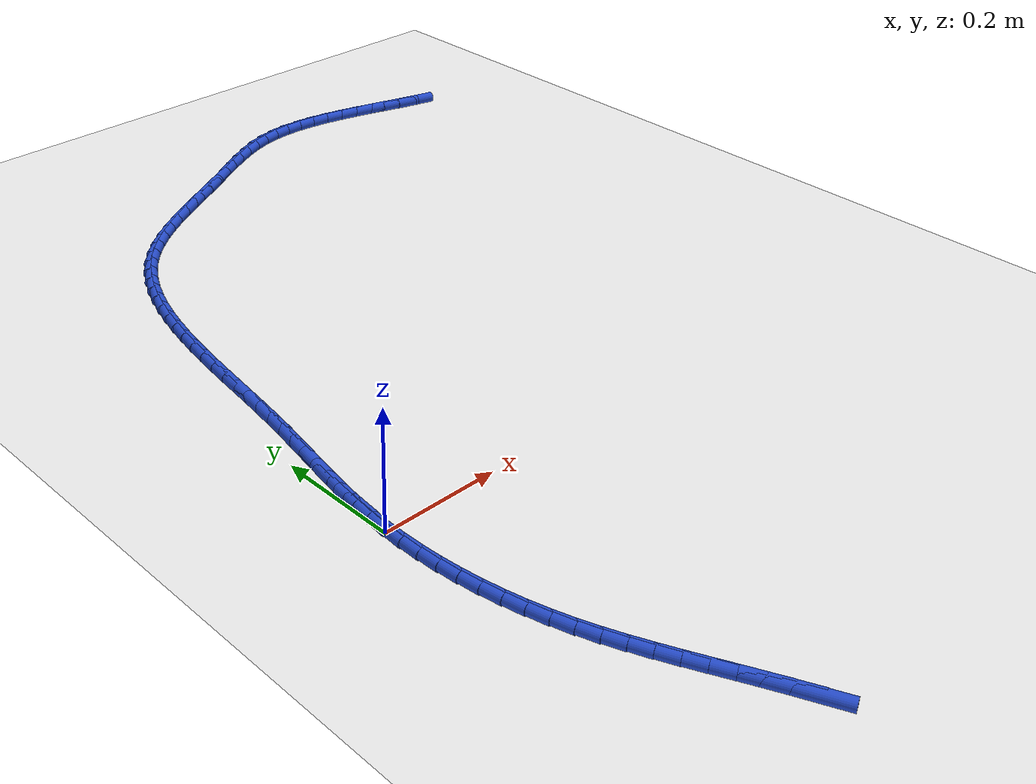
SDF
<sdf version="1.6">
 <world name="default">
  <model name="ground_plane">
   <static>1</static>
   <link name="link">
    <collision name="collision">
     <geometry><plane><normal>0 0 1</normal><size>100 100</size></plane></geometry>
     <surface><friction><ode><mu>100</mu><mu2>50</mu2></ode></friction></surface>
    </collision>
    <visual name="visual">
     <cast_shadows>0</cast_shadows>
     <geometry><plane><normal>0 0 1</normal><size>100 100</size></plane></geometry>
     <material>
      <script><uri>file://media/materials/scripts/gazebo.material</uri><name>Gazebo/WhiteGlow</name></script>
     </material>
    </visual>
   </link>
  </model>
  <model name="line">
   <link name="link_0">
    <pose>1.3877787807814457e-17 -4.85722573273506e-17 0.01 0 1.57 1.5098343674166879</pose>
    <collision name="collision">
     <geometry><cylinder><radius>0.01</radius><length>0.08</length></cylinder></geometry>
    </collision>
    <visual name="visual">
     <material>
      <script><name>Gazebo/Blue</name><uri>file://media/materials/scripts/gazebo.material</uri></script>
     </material>
     <geometry><cylinder><radius>0.01</radius><length>0.08</length></cylinder></geometry>
    </visual>
   </link>
   <link name="link_1">
    <pose>0.002005822508972515 0.032862085258667274 0.01 0 1.57 1.471653737826297</pose>
    <collision name="collision">
     <geometry><cylinder><radius>0.01</radius><length>0.08</length></cylinder></geometry>
    </collision>
    <visual name="visual">
     <material>
      <script><name>Gazebo/Blue</name><uri>file://media/materials/scripts/gazebo.material</uri></script>
     </material>
     <geometry><cylinder><radius>0.01</radius><length>0.08</length></cylinder></geometry>
    </visual>
   </link>
   <link name="link_2">
    <pose>0.005251245925880077 0.0654896685566331 0.01 0 1.57 1.440857654034206</pose>
    <collision name="collision">
     <geometry><cylinder><radius>0.01</radius><length>0.08</length></cylinder></geometry>
    </collision>
    <visual name="visual">
     <material>
      <script><name>Gazebo/Blue</name><uri>file://media/materials/scripts/gazebo.material</uri></script>
     </material>
     <geometry><cylinder><radius>0.01</radius><length>0.08</length></cylinder></geometry>
    </visual>
   </link>
   <link name="link_3">
    <pose>0.00949792651968441 0.09798771672754512 0.01 0 1.57 1.4177356766284084</pose>
    <collision name="collision">
     <geometry><cylinder><radius>0.01</radius><length>0.08</length></cylinder></geometry>
    </collision>
    <visual name="visual">
     <material>
      <script><name>Gazebo/Blue</name><uri>file://media/materials/scripts/gazebo.material</uri></script>
     </material>
     <geometry><cylinder><radius>0.01</radius><length>0.08</length></cylinder></geometry>
    </visual>
   </link>
   <link name="link_4">
    <pose>0.014507520559347219 0.13046119660505093 0.01 0 1.57 1.402406037582658</pose>
    <collision name="collision">
     <geometry><cylinder><radius>0.01</radius><length>0.08</length></cylinder></geometry>
    </collision>
    <visual name="visual">
     <material>
      <script><name>Gazebo/Blue</name><uri>file://media/materials/scripts/gazebo.material</uri></script>
     </material>
     <geometry><cylinder><radius>0.01</radius><length>0.08</length></cylinder></geometry>
    </visual>
   </link>
   <link name="link_5">
    <pose>0.020041684313830247 0.16301507502279824 0.01 0 1.57 1.3948543406237481</pose>
    <collision name="collision">
     <geometry><cylinder><radius>0.01</radius><length>0.08</length></cylinder></geometry>
    </collision>
    <visual name="visual">
     <material>
      <script><name>Gazebo/Blue</name><uri>file://media/materials/scripts/gazebo.material</uri></script>
     </material>
     <geometry><cylinder><radius>0.01</radius><length>0.08</length></cylinder></geometry>
    </visual>
   </link>
   <link name="link_6">
    <pose>0.025862074052095164 0.1957543188144347 0.01 0 1.57 1.3949639020550204</pose>
    <collision name="collision">
     <geometry><cylinder><radius>0.01</radius><length>0.08</length></cylinder></geometry>
    </collision>
    <visual name="visual">
     <material>
      <script><name>Gazebo/Blue</name><uri>file://media/materials/scripts/gazebo.material</uri></script>
     </material>
     <geometry><cylinder><radius>0.01</radius><length>0.08</length></cylinder></geometry>
    </visual>
   </link>
   <link name="link_7">
    <pose>0.03173034604310371 0.22878389481360795 0.01 0 1.57 1.4025346439396587</pose>
    <collision name="collision">
     <geometry><cylinder><radius>0.01</radius><length>0.08</length></cylinder></geometry>
    </collision>
    <visual name="visual">
     <material>
      <script><name>Gazebo/Blue</name><uri>file://media/materials/scripts/gazebo.material</uri></script>
     </material>
     <geometry><cylinder><radius>0.01</radius><length>0.08</length></cylinder></geometry>
    </visual>
   </link>
   <link name="link_8">
    <pose>0.0374081565558176 0.2622087698539657 0.01 0 1.57 1.4171275850355238</pose>
    <collision name="collision">
     <geometry><cylinder><radius>0.01</radius><length>0.08</length></cylinder></geometry>
    </collision>
    <visual name="visual">
     <material>
      <script><name>Gazebo/Blue</name><uri>file://media/materials/scripts/gazebo.material</uri></script>
     </material>
     <geometry><cylinder><radius>0.01</radius><length>0.08</length></cylinder></geometry>
    </visual>
   </link>
   <link name="link_9">
    <pose>0.042662340737105536 0.2961308368124762 0.01 0 1.57 1.4329525047710476</pose>
    <collision name="collision">
     <geometry><cylinder><radius>0.01</radius><length>0.08</length></cylinder></geometry>
    </collision>
    <visual name="visual">
     <material>
      <script><name>Gazebo/Blue</name><uri>file://media/materials/scripts/gazebo.material</uri></script>
     </material>
     <geometry><cylinder><radius>0.01</radius><length>0.08</length></cylinder></geometry>
    </visual>
   </link>
   <link name="link_10">
    <pose>0.047436668979368476 0.3305469674998484 0.01 0 1.57 1.4433966388061799</pose>
    <collision name="collision">
     <geometry><cylinder><radius>0.01</radius><length>0.08</length></cylinder></geometry>
    </collision>
    <visual name="visual">
     <material>
      <script><name>Gazebo/Blue</name><uri>file://media/materials/scripts/gazebo.material</uri></script>
     </material>
     <geometry><cylinder><radius>0.01</radius><length>0.08</length></cylinder></geometry>
    </visual>
   </link>
   <link name="link_11">
    <pose>0.0518915634619804 0.36532543864893435 0.01 0 1.57 1.4482997360209395</pose>
    <collision name="collision">
     <geometry><cylinder><radius>0.01</radius><length>0.08</length></cylinder></geometry>
    </collision>
    <visual name="visual">
     <material>
      <script><name>Gazebo/Blue</name><uri>file://media/materials/scripts/gazebo.material</uri></script>
     </material>
     <geometry><cylinder><radius>0.01</radius><length>0.08</length></cylinder></geometry>
    </visual>
   </link>
   <link name="link_12">
    <pose>0.05620067080520865 0.40032667753964574 0.01 0 1.57 1.4478051291439054</pose>
    <collision name="collision">
     <geometry><cylinder><radius>0.01</radius><length>0.08</length></cylinder></geometry>
    </collision>
    <visual name="visual">
     <material>
      <script><name>Gazebo/Blue</name><uri>file://media/materials/scripts/gazebo.material</uri></script>
     </material>
     <geometry><cylinder><radius>0.01</radius><length>0.08</length></cylinder></geometry>
    </visual>
   </link>
   <link name="link_13">
    <pose>0.06053763762932055 0.4354111114518938 0.01 0 1.57 1.4419473533217477</pose>
    <collision name="collision">
     <geometry><cylinder><radius>0.01</radius><length>0.08</length></cylinder></geometry>
    </collision>
    <visual name="visual">
     <material>
      <script><name>Gazebo/Blue</name><uri>file://media/materials/scripts/gazebo.material</uri></script>
     </material>
     <geometry><cylinder><radius>0.01</radius><length>0.08</length></cylinder></geometry>
    </visual>
   </link>
   <link name="link_14">
    <pose>0.06507611055458347 0.47043916766559013 0.01 0 1.57 1.4306550359925612</pose>
    <collision name="collision">
     <geometry><cylinder><radius>0.01</radius><length>0.08</length></cylinder></geometry>
    </collision>
    <visual name="visual">
     <material>
      <script><name>Gazebo/Blue</name><uri>file://media/materials/scripts/gazebo.material</uri></script>
     </material>
     <geometry><cylinder><radius>0.01</radius><length>0.08</length></cylinder></geometry>
    </visual>
   </link>
   <link name="link_15">
    <pose>0.06998973620126477 0.5052712734606467 0.01 0 1.57 1.4137533707198946</pose>
    <collision name="collision">
     <geometry><cylinder><radius>0.01</radius><length>0.08</length></cylinder></geometry>
    </collision>
    <visual name="visual">
     <material>
      <script><name>Gazebo/Blue</name><uri>file://media/materials/scripts/gazebo.material</uri></script>
     </material>
     <geometry><cylinder><radius>0.01</radius><length>0.08</length></cylinder></geometry>
    </visual>
   </link>
   <link name="link_16">
    <pose>0.07545216118963177 0.5397678561169745 0.01 0 1.57 1.3909671234156933</pose>
    <collision name="collision">
     <geometry><cylinder><radius>0.01</radius><length>0.08</length></cylinder></geometry>
    </collision>
    <visual name="visual">
     <material>
      <script><name>Gazebo/Blue</name><uri>file://media/materials/scripts/gazebo.material</uri></script>
     </material>
     <geometry><cylinder><radius>0.01</radius><length>0.08</length></cylinder></geometry>
    </visual>
   </link>
   <link name="link_17">
    <pose>0.08163703213995185 0.5737893429144856 0.01 0 1.57 1.3619261029257712</pose>
    <collision name="collision">
     <geometry><cylinder><radius>0.01</radius><length>0.08</length></cylinder></geometry>
    </collision>
    <visual name="visual">
     <material>
      <script><name>Gazebo/Blue</name><uri>file://media/materials/scripts/gazebo.material</uri></script>
     </material>
     <geometry><cylinder><radius>0.01</radius><length>0.08</length></cylinder></geometry>
    </visual>
   </link>
   <link name="link_18">
    <pose>0.08871799567249235 0.6071961611330909 0.01 0 1.57 1.3261763089187146</pose>
    <collision name="collision">
     <geometry><cylinder><radius>0.01</radius><length>0.08</length></cylinder></geometry>
    </collision>
    <visual name="visual">
     <material>
      <script><name>Gazebo/Blue</name><uri>file://media/materials/scripts/gazebo.material</uri></script>
     </material>
     <geometry><cylinder><radius>0.01</radius><length>0.08</length></cylinder></geometry>
    </visual>
   </link>
   <link name="link_19">
    <pose>0.09686869840752063 0.6398487380527025 0.01 0 1.57 1.2832016281928427</pose>
    <collision name="collision">
     <geometry><cylinder><radius>0.01</radius><length>0.08</length></cylinder></geometry>
    </collision>
    <visual name="visual">
     <material>
      <script><name>Gazebo/Blue</name><uri>file://media/materials/scripts/gazebo.material</uri></script>
     </material>
     <geometry><cylinder><radius>0.01</radius><length>0.08</length></cylinder></geometry>
    </visual>
   </link>
   <link name="link_20">
    <pose>0.106262786965304 0.6716075009532316 0.01 0 1.57 1.232462843104132</pose>
    <collision name="collision">
     <geometry><cylinder><radius>0.01</radius><length>0.08</length></cylinder></geometry>
    </collision>
    <visual name="visual">
     <material>
      <script><name>Gazebo/Blue</name><uri>file://media/materials/scripts/gazebo.material</uri></script>
     </material>
     <geometry><cylinder><radius>0.01</radius><length>0.08</length></cylinder></geometry>
    </visual>
   </link>
   <link name="link_21">
    <pose>0.11707390796610982 0.70233287711459 0.01 0 1.57 1.173462196201212</pose>
    <collision name="collision">
     <geometry><cylinder><radius>0.01</radius><length>0.08</length></cylinder></geometry>
    </collision>
    <visual name="visual">
     <material>
      <script><name>Gazebo/Blue</name><uri>file://media/materials/scripts/gazebo.material</uri></script>
     </material>
     <geometry><cylinder><radius>0.01</radius><length>0.08</length></cylinder></geometry>
    </visual>
   </link>
   <link name="link_22">
    <pose>0.12947570803020547 0.7318852938166892 0.01 0 1.57 1.1058412544207106</pose>
    <collision name="collision">
     <geometry><cylinder><radius>0.01</radius><length>0.08</length></cylinder></geometry>
    </collision>
    <visual name="visual">
     <material>
      <script><name>Gazebo/Blue</name><uri>file://media/materials/scripts/gazebo.material</uri></script>
     </material>
     <geometry><cylinder><radius>0.01</radius><length>0.08</length></cylinder></geometry>
    </visual>
   </link>
   <link name="link_23">
    <pose>0.1436418337778583 0.7601251783394406 0.01 0 1.57 1.029514547674262</pose>
    <collision name="collision">
     <geometry><cylinder><radius>0.01</radius><length>0.08</length></cylinder></geometry>
    </collision>
    <visual name="visual">
     <material>
      <script><name>Gazebo/Blue</name><uri>file://media/materials/scripts/gazebo.material</uri></script>
     </material>
     <geometry><cylinder><radius>0.01</radius><length>0.08</length></cylinder></geometry>
    </visual>
   </link>
   <link name="link_24">
    <pose>0.15974593182933566 0.7869129579627561 0.01 0 1.57 0.944828072040286</pose>
    <collision name="collision">
     <geometry><cylinder><radius>0.01</radius><length>0.08</length></cylinder></geometry>
    </collision>
    <visual name="visual">
     <material>
      <script><name>Gazebo/Blue</name><uri>file://media/materials/scripts/gazebo.material</uri></script>
     </material>
     <geometry><cylinder><radius>0.01</radius><length>0.08</length></cylinder></geometry>
    </visual>
   </link>
   <link name="link_25">
    <pose>0.17796164880490487 0.8121090599665466 0.01 0 1.57 0.852933231577433</pose>
    <collision name="collision">
     <geometry><cylinder><radius>0.01</radius><length>0.08</length></cylinder></geometry>
    </collision>
    <visual name="visual">
     <material>
      <script><name>Gazebo/Blue</name><uri>file://media/materials/scripts/gazebo.material</uri></script>
     </material>
     <geometry><cylinder><radius>0.01</radius><length>0.08</length></cylinder></geometry>
    </visual>
   </link>
   <link name="link_26">
    <pose>0.19845724663704184 0.8355783520005767 0.01 0 1.57 0.7634567779924151</pose>
    <collision name="collision">
     <geometry><cylinder><radius>0.01</radius><length>0.08</length></cylinder></geometry>
    </collision>
    <visual name="visual">
     <material>
      <script><name>Gazebo/Blue</name><uri>file://media/materials/scripts/gazebo.material</uri></script>
     </material>
     <geometry><cylinder><radius>0.01</radius><length>0.08</length></cylinder></geometry>
    </visual>
   </link>
   <link name="link_27">
    <pose>0.22120397209784176 0.8573481661345499 0.01 0 1.57 0.6876047246330469</pose>
    <collision name="collision">
     <geometry><cylinder><radius>0.01</radius><length>0.08</length></cylinder></geometry>
    </collision>
    <visual name="visual">
     <material>
      <script><name>Gazebo/Blue</name><uri>file://media/materials/scripts/gazebo.material</uri></script>
     </material>
     <geometry><cylinder><radius>0.01</radius><length>0.08</length></cylinder></geometry>
    </visual>
   </link>
   <link name="link_28">
    <pose>0.24592404696274023 0.8776511876787778 0.01 0 1.57 0.6258743921532061</pose>
    <collision name="collision">
     <geometry><cylinder><radius>0.01</radius><length>0.08</length></cylinder></geometry>
    </collision>
    <visual name="visual">
     <material>
      <script><name>Gazebo/Blue</name><uri>file://media/materials/scripts/gazebo.material</uri></script>
     </material>
     <geometry><cylinder><radius>0.01</radius><length>0.08</length></cylinder></geometry>
    </visual>
   </link>
   <link name="link_29">
    <pose>0.2723237270608856 0.8967332679263186 0.01 0 1.57 0.5775479767237015</pose>
    <collision name="collision">
     <geometry><cylinder><radius>0.01</radius><length>0.08</length></cylinder></geometry>
    </collision>
    <visual name="visual">
     <material>
      <script><name>Gazebo/Blue</name><uri>file://media/materials/scripts/gazebo.material</uri></script>
     </material>
     <geometry><cylinder><radius>0.01</radius><length>0.08</length></cylinder></geometry>
    </visual>
   </link>
   <link name="link_30">
    <pose>0.3001092682214257 0.9148402581702304 0.01 0 1.57 0.541721054083425</pose>
    <collision name="collision">
     <geometry><cylinder><radius>0.01</radius><length>0.08</length></cylinder></geometry>
    </collision>
    <visual name="visual">
     <material>
      <script><name>Gazebo/Blue</name><uri>file://media/materials/scripts/gazebo.material</uri></script>
     </material>
     <geometry><cylinder><radius>0.01</radius><length>0.08</length></cylinder></geometry>
    </visual>
   </link>
   <link name="link_31">
    <pose>0.3289869262735088 0.9322180097035712 0.01 0 1.57 0.5175349325780471</pose>
    <collision name="collision">
     <geometry><cylinder><radius>0.01</radius><length>0.08</length></cylinder></geometry>
    </collision>
    <visual name="visual">
     <material>
      <script><name>Gazebo/Blue</name><uri>file://media/materials/scripts/gazebo.material</uri></script>
     </material>
     <geometry><cylinder><radius>0.01</radius><length>0.08</length></cylinder></geometry>
    </visual>
   </link>
   <link name="link_32">
    <pose>0.3586629570462829 0.9491123738193991 0.01 0 1.57 0.5043038750434684</pose>
    <collision name="collision">
     <geometry><cylinder><radius>0.01</radius><length>0.08</length></cylinder></geometry>
    </collision>
    <visual name="visual">
     <material>
      <script><name>Gazebo/Blue</name><uri>file://media/materials/scripts/gazebo.material</uri></script>
     </material>
     <geometry><cylinder><radius>0.01</radius><length>0.08</length></cylinder></geometry>
    </visual>
   </link>
   <link name="link_33">
    <pose>0.3888436163688961 0.9657692018107722 0.01 0 1.57 0.5015740202347124</pose>
    <collision name="collision">
     <geometry><cylinder><radius>0.01</radius><length>0.08</length></cylinder></geometry>
    </collision>
    <visual name="visual">
     <material>
      <script><name>Gazebo/Blue</name><uri>file://media/materials/scripts/gazebo.material</uri></script>
     </material>
     <geometry><cylinder><radius>0.01</radius><length>0.08</length></cylinder></geometry>
    </visual>
   </link>
   <link name="link_34">
    <pose>0.4192351600704964 0.9824343449707487 0.01 0 1.57 0.5091422025681815</pose>
    <collision name="collision">
     <geometry><cylinder><radius>0.01</radius><length>0.08</length></cylinder></geometry>
    </collision>
    <visual name="visual">
     <material>
      <script><name>Gazebo/Blue</name><uri>file://media/materials/scripts/gazebo.material</uri></script>
     </material>
     <geometry><cylinder><radius>0.01</radius><length>0.08</length></cylinder></geometry>
    </visual>
   </link>
   <link name="link_35">
    <pose>0.44954384398023184 0.9993536545923862 0.01 0 1.57 0.5226072632514661</pose>
    <collision name="collision">
     <geometry><cylinder><radius>0.01</radius><length>0.08</length></cylinder></geometry>
    </collision>
    <visual name="visual">
     <material>
      <script><name>Gazebo/Blue</name><uri>file://media/materials/scripts/gazebo.material</uri></script>
     </material>
     <geometry><cylinder><radius>0.01</radius><length>0.08</length></cylinder></geometry>
    </visual>
   </link>
   <link name="link_36">
    <pose>0.47954323163416784 1.016634172122781 0.01 0 1.57 0.5224143115743641</pose>
    <collision name="collision">
     <geometry><cylinder><radius>0.01</radius><length>0.08</length></cylinder></geometry>
    </collision>
    <visual name="visual">
     <material>
      <script><name>Gazebo/Blue</name><uri>file://media/materials/scripts/gazebo.material</uri></script>
     </material>
     <geometry><cylinder><radius>0.01</radius><length>0.08</length></cylinder></geometry>
    </visual>
   </link>
   <link name="link_37">
    <pose>0.509304229616162 1.0337697233082912 0.01 0 1.57 0.5026763731914664</pose>
    <collision name="collision">
     <geometry><cylinder><radius>0.01</radius><length>0.08</length></cylinder></geometry>
    </collision>
    <visual name="visual">
     <material>
      <script><name>Gazebo/Blue</name><uri>file://media/materials/scripts/gazebo.material</uri></script>
     </material>
     <geometry><cylinder><radius>0.01</radius><length>0.08</length></cylinder></geometry>
    </visual>
   </link>
   <link name="link_38">
    <pose>0.5389798269954373 1.0500848537686507 0.01 0 1.57 0.462238713212926</pose>
    <collision name="collision">
     <geometry><cylinder><radius>0.01</radius><length>0.08</length></cylinder></geometry>
    </collision>
    <visual name="visual">
     <material>
      <script><name>Gazebo/Blue</name><uri>file://media/materials/scripts/gazebo.material</uri></script>
     </material>
     <geometry><cylinder><radius>0.01</radius><length>0.08</length></cylinder></geometry>
    </visual>
   </link>
   <link name="link_39">
    <pose>0.5687230155376234 1.064904103562747 0.01 0 1.57 0.3994174600707495</pose>
    <collision name="collision">
     <geometry><cylinder><radius>0.01</radius><length>0.08</length></cylinder></geometry>
    </collision>
    <visual name="visual">
     <material>
      <script><name>Gazebo/Blue</name><uri>file://media/materials/scripts/gazebo.material</uri></script>
     </material>
     <geometry><cylinder><radius>0.01</radius><length>0.08</length></cylinder></geometry>
    </visual>
   </link>
   <link name="link_40">
    <pose>0.5986867870083501 1.0775520127494689 0.01 0 1.57 0.31248595396104106</pose>
    <collision name="collision">
     <geometry><cylinder><radius>0.01</radius><length>0.08</length></cylinder></geometry>
    </collision>
    <visual name="visual">
     <material>
      <script><name>Gazebo/Blue</name><uri>file://media/materials/scripts/gazebo.material</uri></script>
     </material>
     <geometry><cylinder><radius>0.01</radius><length>0.08</length></cylinder></geometry>
    </visual>
   </link>
   <link name="link_41">
    <pose>0.6290241331732458 1.0873531213877032 0.01 0 1.57 0.2025114092580881</pose>
    <collision name="collision">
     <geometry><cylinder><radius>0.01</radius><length>0.08</length></cylinder></geometry>
    </collision>
    <visual name="visual">
     <material>
      <script><name>Gazebo/Blue</name><uri>file://media/materials/scripts/gazebo.material</uri></script>
     </material>
     <geometry><cylinder><radius>0.01</radius><length>0.08</length></cylinder></geometry>
    </visual>
   </link>
   <link name="link_42">
    <pose>0.6598770739553411 1.0936880316659074 0.01 0 1.57 0.09165707438052409</pose>
    <collision name="collision">
     <geometry><cylinder><radius>0.01</radius><length>0.08</length></cylinder></geometry>
    </collision>
    <visual name="visual">
     <material>
      <script><name>Gazebo/Blue</name><uri>file://media/materials/scripts/gazebo.material</uri></script>
     </material>
     <geometry><cylinder><radius>0.01</radius><length>0.08</length></cylinder></geometry>
    </visual>
   </link>
   <link name="link_43">
    <pose>0.6912632497832496 1.0965728798013883 0.01 0 1.57 -0.004602035497805699</pose>
    <collision name="collision">
     <geometry><cylinder><radius>0.01</radius><length>0.08</length></cylinder></geometry>
    </collision>
    <visual name="visual">
     <material>
      <script><name>Gazebo/Blue</name><uri>file://media/materials/scripts/gazebo.material</uri></script>
     </material>
     <geometry><cylinder><radius>0.01</radius><length>0.08</length></cylinder></geometry>
    </visual>
   </link>
   <link name="link_44">
    <pose>0.7231215354477635 1.0964262658048267 0.01 0 1.57 -0.08511363219749522</pose>
    <collision name="collision">
     <geometry><cylinder><radius>0.01</radius><length>0.08</length></cylinder></geometry>
    </collision>
    <visual name="visual">
     <material>
      <script><name>Gazebo/Blue</name><uri>file://media/materials/scripts/gazebo.material</uri></script>
     </material>
     <geometry><cylinder><radius>0.01</radius><length>0.08</length></cylinder></geometry>
    </visual>
   </link>
   <link name="link_45">
    <pose>0.7553895578639738 1.0936731658783725 0.01 0 1.57 -0.15015815287526973</pose>
    <collision name="collision">
     <geometry><cylinder><radius>0.01</radius><length>0.08</length></cylinder></geometry>
    </collision>
    <visual name="visual">
     <material>
      <script><name>Gazebo/Blue</name><uri>file://media/materials/scripts/gazebo.material</uri></script>
     </material>
     <geometry><cylinder><radius>0.01</radius><length>0.08</length></cylinder></geometry>
    </visual>
   </link>
   <link name="link_46">
    <pose>0.7880049439469723 1.0887385562241763 0.01 0 1.57 -0.2006394845438224</pose>
    <collision name="collision">
     <geometry><cylinder><radius>0.01</radius><length>0.08</length></cylinder></geometry>
    </collision>
    <visual name="visual">
     <material>
      <script><name>Gazebo/Blue</name><uri>file://media/materials/scripts/gazebo.material</uri></script>
     </material>
     <geometry><cylinder><radius>0.01</radius><length>0.08</length></cylinder></geometry>
    </visual>
   </link>
   <link name="link_47">
    <pose>0.820905320611851 1.082047413044388 0.01 0 1.57 -0.2376329992822089</pose>
    <collision name="collision">
     <geometry><cylinder><radius>0.01</radius><length>0.08</length></cylinder></geometry>
    </collision>
    <visual name="visual">
     <material>
      <script><name>Gazebo/Blue</name><uri>file://media/materials/scripts/gazebo.material</uri></script>
     </material>
     <geometry><cylinder><radius>0.01</radius><length>0.08</length></cylinder></geometry>
    </visual>
   </link>
   <link name="link_48">
    <pose>0.8540283147737013 1.0740247125411582 0.01 0 1.57 -0.26210953408189924</pose>
    <collision name="collision">
     <geometry><cylinder><radius>0.01</radius><length>0.08</length></cylinder></geometry>
    </collision>
    <visual name="visual">
     <material>
      <script><name>Gazebo/Blue</name><uri>file://media/materials/scripts/gazebo.material</uri></script>
     </material>
     <geometry><cylinder><radius>0.01</radius><length>0.08</length></cylinder></geometry>
    </visual>
   </link>
   <link name="link_49">
    <pose>0.8873115533476147 1.065095430916636 0.01 0 1.57 -0.2747905617515638</pose>
    <collision name="collision">
     <geometry><cylinder><radius>0.01</radius><length>0.08</length></cylinder></geometry>
    </collision>
    <visual name="visual">
     <material>
      <script><name>Gazebo/Blue</name><uri>file://media/materials/scripts/gazebo.material</uri></script>
     </material>
     <geometry><cylinder><radius>0.01</radius><length>0.08</length></cylinder></geometry>
    </visual>
   </link>
   <link name="link_50">
    <pose>0.9206926632486832 1.0556845443729725 0.01 0 1.57 -0.2760825117288324</pose>
    <collision name="collision">
     <geometry><cylinder><radius>0.01</radius><length>0.08</length></cylinder></geometry>
    </collision>
    <visual name="visual">
     <material>
      <script><name>Gazebo/Blue</name><uri>file://media/materials/scripts/gazebo.material</uri></script>
     </material>
     <geometry><cylinder><radius>0.01</radius><length>0.08</length></cylinder></geometry>
    </visual>
   </link>
   <link name="link_51">
    <pose>0.9541092713919975 1.0462170291123174 0.01 0 1.57 -0.2660534748109831</pose>
    <collision name="collision">
     <geometry><cylinder><radius>0.01</radius><length>0.08</length></cylinder></geometry>
    </collision>
    <visual name="visual">
     <material>
      <script><name>Gazebo/Blue</name><uri>file://media/materials/scripts/gazebo.material</uri></script>
     </material>
     <geometry><cylinder><radius>0.01</radius><length>0.08</length></cylinder></geometry>
    </visual>
   </link>
   <link name="link_52">
    <pose>0.9874990046926504 1.0371178613368208 0.01 0 1.57 -0.24443375308970214</pose>
    <collision name="collision">
     <geometry><cylinder><radius>0.01</radius><length>0.08</length></cylinder></geometry>
    </collision>
    <visual name="visual">
     <material>
      <script><name>Gazebo/Blue</name><uri>file://media/materials/scripts/gazebo.material</uri></script>
     </material>
     <geometry><cylinder><radius>0.01</radius><length>0.08</length></cylinder></geometry>
    </visual>
   </link>
   <link name="link_202">
    <pose>0.17142354741591476 -0.5678862631221228 0.01 0 1.57 -1.1341849729894333</pose>
    <collision name="collision">
     <geometry><cylinder><radius>0.01</radius><length>0.08</length></cylinder></geometry>
    </collision>
    <visual name="visual">
     <material>
      <script><name>Gazebo/Blue</name><uri>file://media/materials/scripts/gazebo.material</uri></script>
     </material>
     <geometry><cylinder><radius>0.01</radius><length>0.08</length></cylinder></geometry>
    </visual>
   </link>
   <link name="link_203">
    <pose>0.15641019427191769 -0.535713465104865 0.01 0 1.57 -1.119997238687743</pose>
    <collision name="collision">
     <geometry><cylinder><radius>0.01</radius><length>0.08</length></cylinder></geometry>
    </collision>
    <visual name="visual">
     <material>
      <script><name>Gazebo/Blue</name><uri>file://media/materials/scripts/gazebo.material</uri></script>
     </material>
     <geometry><cylinder><radius>0.01</radius><length>0.08</length></cylinder></geometry>
    </visual>
   </link>
   <link name="link_204">
    <pose>0.141272114600839 -0.5044390899745835 0.01 0 1.57 -1.1107124831466237</pose>
    <collision name="collision">
     <geometry><cylinder><radius>0.01</radius><length>0.08</length></cylinder></geometry>
    </collision>
    <visual name="visual">
     <material>
      <script><name>Gazebo/Blue</name><uri>file://media/materials/scripts/gazebo.material</uri></script>
     </material>
     <geometry><cylinder><radius>0.01</radius><length>0.08</length></cylinder></geometry>
    </visual>
   </link>
   <link name="link_205">
    <pose>0.12614413080613054 -0.47391162319445623 0.01 0 1.57 -1.1083494550513884</pose>
    <collision name="collision">
     <geometry><cylinder><radius>0.01</radius><length>0.08</length></cylinder></geometry>
    </collision>
    <visual name="visual">
     <material>
      <script><name>Gazebo/Blue</name><uri>file://media/materials/scripts/gazebo.material</uri></script>
     </material>
     <geometry><cylinder><radius>0.01</radius><length>0.08</length></cylinder></geometry>
    </visual>
   </link>
   <link name="link_206">
    <pose>0.11119483382800584 -0.4439230622522855 0.01 0 1.57 -1.1132854850716567</pose>
    <collision name="collision">
     <geometry><cylinder><radius>0.01</radius><length>0.08</length></cylinder></geometry>
    </collision>
    <visual name="visual">
     <material>
      <script><name>Gazebo/Blue</name><uri>file://media/materials/scripts/gazebo.material</uri></script>
     </material>
     <geometry><cylinder><radius>0.01</radius><length>0.08</length></cylinder></geometry>
    </visual>
   </link>
   <link name="link_207">
    <pose>0.09659281460667815 -0.4142654046358732 0.01 0 1.57 -1.1257706287286489</pose>
    <collision name="collision">
     <geometry><cylinder><radius>0.01</radius><length>0.08</length></cylinder></geometry>
    </collision>
    <visual name="visual">
     <material>
      <script><name>Gazebo/Blue</name><uri>file://media/materials/scripts/gazebo.material</uri></script>
     </material>
     <geometry><cylinder><radius>0.01</radius><length>0.08</length></cylinder></geometry>
    </visual>
   </link>
   <link name="link_208">
    <pose>0.0825066640823617 -0.3847306478330228 0.01 0 1.57 -1.1459016377903548</pose>
    <collision name="collision">
     <geometry><cylinder><radius>0.01</radius><length>0.08</length></cylinder></geometry>
    </collision>
    <visual name="visual">
     <material>
      <script><name>Gazebo/Blue</name><uri>file://media/materials/scripts/gazebo.material</uri></script>
     </material>
     <geometry><cylinder><radius>0.01</radius><length>0.08</length></cylinder></geometry>
    </visual>
   </link>
   <link name="link_209">
    <pose>0.06910497319526965 -0.35511078933153634 0.01 0 1.57 -1.173589102798461</pose>
    <collision name="collision">
     <geometry><cylinder><radius>0.01</radius><length>0.08</length></cylinder></geometry>
    </collision>
    <visual name="visual">
     <material>
      <script><name>Gazebo/Blue</name><uri>file://media/materials/scripts/gazebo.material</uri></script>
     </material>
     <geometry><cylinder><radius>0.01</radius><length>0.08</length></cylinder></geometry>
    </visual>
   </link>
   <link name="link_210">
    <pose>0.05655633288561554 -0.32519782661921576 0.01 0 1.57 -1.2085215160440652</pose>
    <collision name="collision">
     <geometry><cylinder><radius>0.01</radius><length>0.08</length></cylinder></geometry>
    </collision>
    <visual name="visual">
     <material>
      <script><name>Gazebo/Blue</name><uri>file://media/materials/scripts/gazebo.material</uri></script>
     </material>
     <geometry><cylinder><radius>0.01</radius><length>0.08</length></cylinder></geometry>
    </visual>
   </link>
   <link name="link_211">
    <pose>0.045029334093612955 -0.2947837571838638 0.01 0 1.57 -1.2498959587013758</pose>
    <collision name="collision">
     <geometry><cylinder><radius>0.01</radius><length>0.08</length></cylinder></geometry>
    </collision>
    <visual name="visual">
     <material>
      <script><name>Gazebo/Blue</name><uri>file://media/materials/scripts/gazebo.material</uri></script>
     </material>
     <geometry><cylinder><radius>0.01</radius><length>0.08</length></cylinder></geometry>
    </visual>
   </link>
   <link name="link_212">
    <pose>0.03468796629636138 -0.26367150805741474 0.01 0 1.57 -1.293272698498689</pose>
    <collision name="collision">
     <geometry><cylinder><radius>0.01</radius><length>0.08</length></cylinder></geometry>
    </collision>
    <visual name="visual">
     <material>
      <script><name>Gazebo/Blue</name><uri>file://media/materials/scripts/gazebo.material</uri></script>
     </material>
     <geometry><cylinder><radius>0.01</radius><length>0.08</length></cylinder></geometry>
    </visual>
   </link>
   <link name="link_213">
    <pose>0.02562083467197019 -0.23184306149888548 0.01 0 1.57 -1.3356623193095218</pose>
    <collision name="collision">
     <geometry><cylinder><radius>0.01</radius><length>0.08</length></cylinder></geometry>
    </collision>
    <visual name="visual">
     <material>
      <script><name>Gazebo/Blue</name><uri>file://media/materials/scripts/gazebo.material</uri></script>
     </material>
     <geometry><cylinder><radius>0.01</radius><length>0.08</length></cylinder></geometry>
    </visual>
   </link>
   <link name="link_214">
    <pose>0.01785497952692808 -0.19942663064315752 0.01 0 1.57 -1.3773540497501997</pose>
    <collision name="collision">
     <geometry><cylinder><radius>0.01</radius><length>0.08</length></cylinder></geometry>
    </collision>
    <visual name="visual">
     <material>
      <script><name>Gazebo/Blue</name><uri>file://media/materials/scripts/gazebo.material</uri></script>
     </material>
     <geometry><cylinder><radius>0.01</radius><length>0.08</length></cylinder></geometry>
    </visual>
   </link>
   <link name="link_215">
    <pose>0.011415639169752792 -0.16655470878902365 0.01 0 1.57 -1.4187157090596558</pose>
    <collision name="collision">
     <geometry><cylinder><radius>0.01</radius><length>0.08</length></cylinder></geometry>
    </collision>
    <visual name="visual">
     <material>
      <script><name>Gazebo/Blue</name><uri>file://media/materials/scripts/gazebo.material</uri></script>
     </material>
     <geometry><cylinder><radius>0.01</radius><length>0.08</length></cylinder></geometry>
    </visual>
   </link>
   <link name="link_216">
    <pose>0.006328051908961963 -0.13335978923527533 0.01 0 1.57 -1.4601064316527794</pose>
    <collision name="collision">
     <geometry><cylinder><radius>0.01</radius><length>0.08</length></cylinder></geometry>
    </collision>
    <visual name="visual">
     <material>
      <script><name>Gazebo/Blue</name><uri>file://media/materials/scripts/gazebo.material</uri></script>
     </material>
     <geometry><cylinder><radius>0.01</radius><length>0.08</length></cylinder></geometry>
    </visual>
   </link>
   <link name="link_217">
    <pose>0.0026174560530735987 -0.09997436528070684 0.01 0 1.57 -1.5018826293139027</pose>
    <collision name="collision">
     <geometry><cylinder><radius>0.01</radius><length>0.08</length></cylinder></geometry>
    </collision>
    <visual name="visual">
     <material>
      <script><name>Gazebo/Blue</name><uri>file://media/materials/scripts/gazebo.material</uri></script>
     </material>
     <geometry><cylinder><radius>0.01</radius><length>0.08</length></cylinder></geometry>
    </visual>
   </link>
   <link name="link_218">
    <pose>0.0003090899106053119 -0.06653093022410993 0.01 0 1.57 -1.5444037222944809</pose>
    <collision name="collision">
     <geometry><cylinder><radius>0.01</radius><length>0.08</length></cylinder></geometry>
    </collision>
    <visual name="visual">
     <material>
      <script><name>Gazebo/Blue</name><uri>file://media/materials/scripts/gazebo.material</uri></script>
     </material>
     <geometry><cylinder><radius>0.01</radius><length>0.08</length></cylinder></geometry>
    </visual>
   </link>
   <link name="link_219">
    <pose>-0.0005718082099251467 -0.033161977364277076 0.01 0 1.57 1.553555148915407</pose>
    <collision name="collision">
     <geometry><cylinder><radius>0.01</radius><length>0.08</length></cylinder></geometry>
    </collision>
    <visual name="visual">
     <material>
      <script><name>Gazebo/Blue</name><uri>file://media/materials/scripts/gazebo.material</uri></script>
     </material>
     <geometry><cylinder><radius>0.01</radius><length>0.08</length></cylinder></geometry>
    </visual>
   </link>
   <link name="link_220">
    <pose>6.938893903907228e-18 -4.85722573273506e-17 0.01 0 1.57 1.508427711205442</pose>
    <collision name="collision">
     <geometry><cylinder><radius>0.01</radius><length>0.08</length></cylinder></geometry>
    </collision>
    <visual name="visual">
     <material>
      <script><name>Gazebo/Blue</name><uri>file://media/materials/scripts/gazebo.material</uri></script>
     </material>
     <geometry><cylinder><radius>0.01</radius><length>0.08</length></cylinder></geometry>
    </visual>
   </link>
   <link name="link_221">
    <pose>0.0020497528488984274 0.03282250856992625 0.01 0 1.57 1.4614085801297907</pose>
    <collision name="collision">
     <geometry><cylinder><radius>0.01</radius><length>0.08</length></cylinder></geometry>
    </collision>
    <visual name="visual">
     <material>
      <script><name>Gazebo/Blue</name><uri>file://media/materials/scripts/gazebo.material</uri></script>
     </material>
     <geometry><cylinder><radius>0.01</radius><length>0.08</length></cylinder></geometry>
    </visual>
   </link>
   <link name="link_222">
    <pose>0.0056026886452880675 0.06517305504671245 0.01 0 1.57 1.48504082806339</pose>
    <collision name="collision">
     <geometry><cylinder><radius>0.01</radius><length>0.08</length></cylinder></geometry>
    </collision>
    <visual name="visual">
     <material>
      <script><name>Gazebo/Blue</name><uri>file://media/materials/scripts/gazebo.material</uri></script>
     </material>
     <geometry><cylinder><radius>0.01</radius><length>0.08</length></cylinder></geometry>
    </visual>
   </link>
  </model>
 </world>
</sdf>
